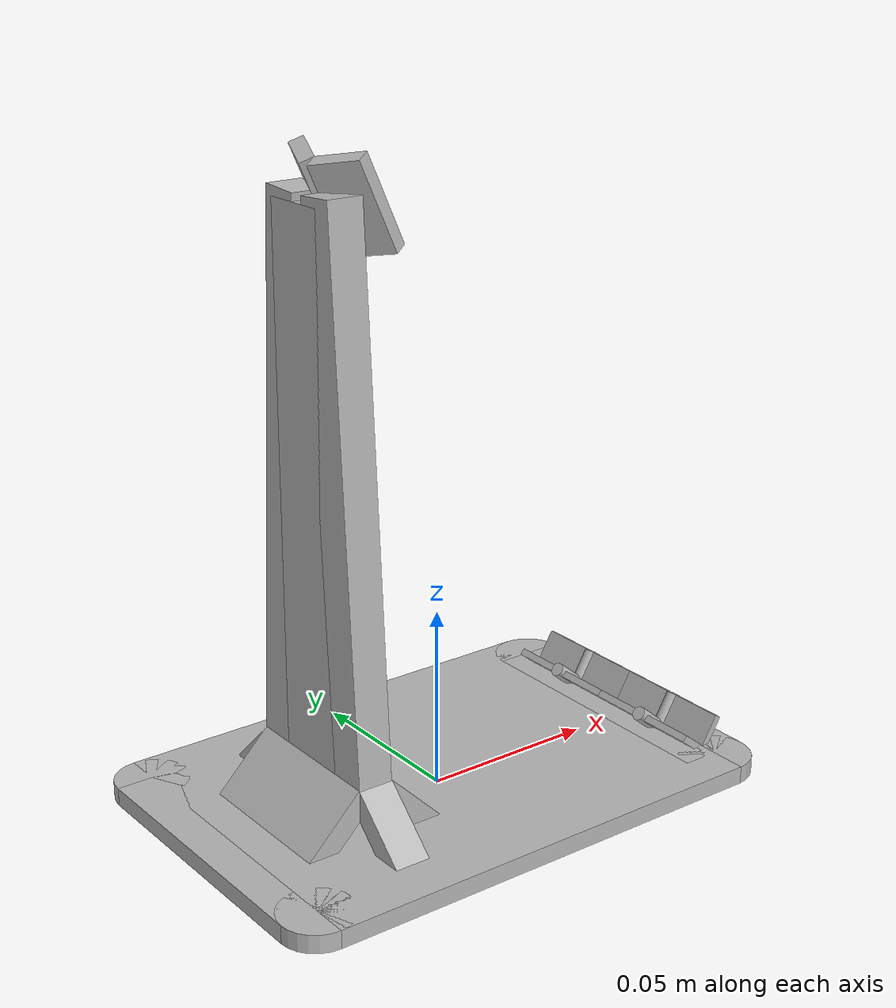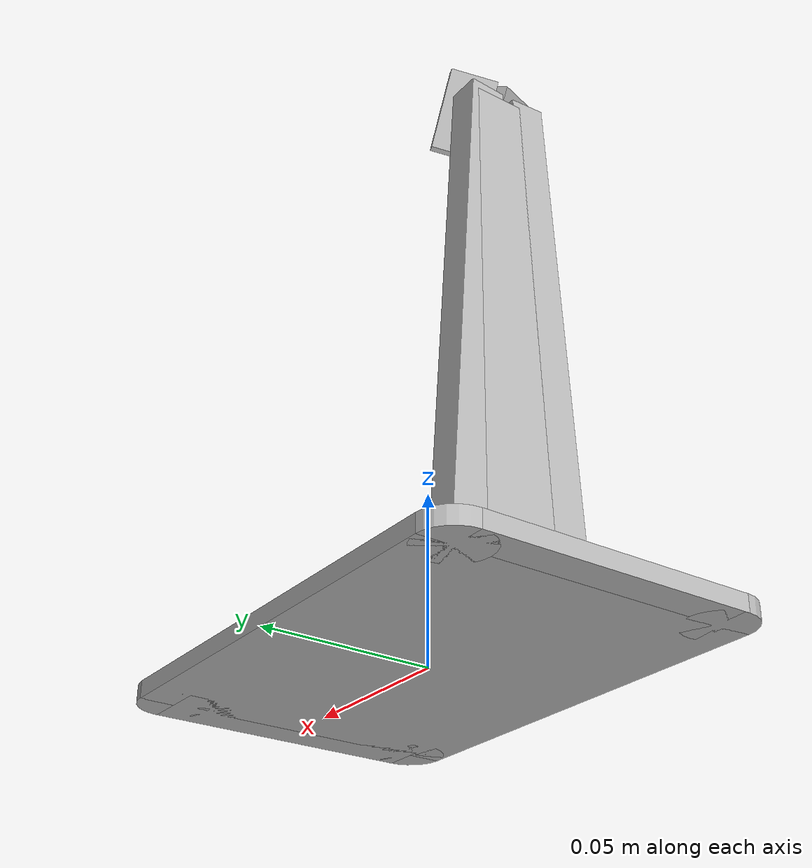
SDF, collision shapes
<?xml version="1.0" ?>
<!-- |    This document was autogenerated by xacro from bazel-out/k8-opt/bin/models/lifelong/spatula/tmpz9lp_58d/spatula_holder_light_blue_issue8027_high.sdf.xacro | -->
<!-- |    EDITING THIS FILE BY HAND IS NOT RECOMMENDED                                 | -->
<sdf version="1.6" xmlns:drake="drake.mit.edu">
  <model name="spatula_holder_light_blue_issue8027_high">
    <link name="spatula_holder_light_blue_issue8027_high">
      <pose>0 0 0 0 0 0</pose>
      <inertial>
        <pose>-1.07e-05 0.0355 -0.000153 0 0 0</pose>
        <mass>0.35</mass>
        <inertia>
          <ixx> 0.000311</ixx>
          <ixy> 0.000000</ixy>
          <ixz> 0.000000</ixz>
          <iyy> 0.000497</iyy>
          <iyz> 0.000000</iyz>
          <izz> 0.000723</izz>
        </inertia>
      </inertial>
      <visual name="spatula_holder_light_blue_issue8027_high">
        <pose>0 0 0 0 0 0</pose>
        <geometry>
          <mesh>
            <uri>spatula_holder_light_blue_issue8027_high.gltf</uri>
            <scale>1.0 1.0 1.0</scale>
          </mesh>
        </geometry>
        <!-- Comment out the material below to ensure the texture is actually
             from the glTF specification. -->
      </visual>
      <collision name="base_back_block">
        <pose>-0.06488 -0.0 0.0025 0.0 0.0 0.0</pose>
        <geometry>
          <box>
            <size>0.02023 0.07977 0.005</size>
          </box>
        </geometry>
      </collision>
      <collision name="base_back_left">
        <pose>-0.06488 -0.03989 0.0025 0.0 -0.0 1.5708</pose>
        <geometry>
          <cylinder>
            <radius>0.01012</radius>
            <length>0.005</length>
          </cylinder>
        </geometry>
      </collision>
      <collision name="base_back_right">
        <pose>-0.06488 0.03988 0.0025 0.0 -0.0 1.5708</pose>
        <geometry>
          <cylinder>
            <radius>0.01012</radius>
            <length>0.005</length>
          </cylinder>
        </geometry>
      </collision>
      <collision name="base_front_block">
        <pose>0.06488 -0.0 0.0025 0.0 0.0 0.0</pose>
        <geometry>
          <box>
            <size>0.02023 0.07977 0.005</size>
          </box>
        </geometry>
      </collision>
      <collision name="base_front_left">
        <pose>0.06488 -0.03988 0.0025 0.0 -0.0 1.5708</pose>
        <geometry>
          <cylinder>
            <radius>0.01012</radius>
            <length>0.005</length>
          </cylinder>
        </geometry>
      </collision>
      <collision name="base_front_right">
        <pose>0.06488 0.03988 0.0025 0.0 -0.0 1.5708</pose>
        <geometry>
          <cylinder>
            <radius>0.01012</radius>
            <length>0.005</length>
          </cylinder>
        </geometry>
      </collision>
      <collision name="base_large_block">
        <pose>0.0 0.0 0.0025 0.0 0.0 0.0</pose>
        <geometry>
          <box>
            <size>0.12977 0.1 0.005</size>
          </box>
        </geometry>
      </collision>
      <collision name="bottom_back_tab_collision_1">
        <pose>0.061 0.0175 0.007 0.6708 -0.0 1.5708</pose>
        <geometry>
          <box>
            <size>0.035 0.007 0.002</size>
          </box>
        </geometry>
      </collision>
      <collision name="bottom_back_tab_collision_2">
        <pose>0.061 -0.0175 0.007 0.6708 -0.0 1.5708</pose>
        <geometry>
          <box>
            <size>0.035 0.007 0.002</size>
          </box>
        </geometry>
      </collision>
      <collision name="bottom_back_tab_collision_3">
        <pose>0.061 0.0175 0.007 2.2708 -0.0 1.5708</pose>
        <geometry>
          <cylinder>
            <radius>0.002</radius>
            <length>0.01</length>
          </cylinder>
        </geometry>
      </collision>
      <collision name="bottom_back_tab_collision_4">
        <pose>0.061 -0.0175 0.007 2.2708 -0.0 1.5708</pose>
        <geometry>
          <cylinder>
            <radius>0.002</radius>
            <length>0.01</length>
          </cylinder>
        </geometry>
      </collision>
      <collision name="bottom_front_tab_collision_1">
        <pose>0.068 0.0175 0.008 2.1008 -0.0 1.5708</pose>
        <geometry>
          <box>
            <size>0.035 0.01 0.002</size>
          </box>
        </geometry>
      </collision>
      <collision name="bottom_front_tab_collision_2">
        <pose>0.068 -0.0175 0.008 2.1008 -0.0 1.5708</pose>
        <geometry>
          <box>
            <size>0.035 0.01 0.002</size>
          </box>
        </geometry>
      </collision>
      <collision name="bottom_front_tab_collision_3">
        <pose>0.068 -0.0175 0.008 0.5208 -0.0 1.5708</pose>
        <geometry>
          <cylinder>
            <radius>0.002</radius>
            <length>0.01</length>
          </cylinder>
        </geometry>
      </collision>
      <collision name="bottom_front_tab_collision_4">
        <pose>0.068 0.0175 0.008 0.5208 -0.0 1.5708</pose>
        <geometry>
          <cylinder>
            <radius>0.002</radius>
            <length>0.01</length>
          </cylinder>
        </geometry>
      </collision>
      <collision name="pillar_base_inner">
        <pose>-0.02447 -0.0 0.0101 -2.35619 -0.0 1.5708</pose>
        <geometry>
          <box>
            <size>0.04297 0.02216 0.00618</size>
          </box>
        </geometry>
      </collision>
      <collision name="pillar_base_left">
        <pose>-0.03488 -0.02715 0.0101 -0.76447 0.0 -3.14159</pose>
        <geometry>
          <box>
            <size>0.00991 0.02216 0.00618</size>
          </box>
        </geometry>
      </collision>
      <collision name="pillar_base_outer">
        <pose>-0.04552 -0.0 0.0101 2.35567 0.0 1.5708</pose>
        <geometry>
          <box>
            <size>0.04297 0.02216 0.00618</size>
          </box>
        </geometry>
      </collision>
      <collision name="pillar_base_right">
        <pose>-0.03488 0.02715 0.0101 -0.76447 3.14159 -3.14159</pose>
        <geometry>
          <box>
            <size>0.00991 0.02216 0.00618</size>
          </box>
        </geometry>
      </collision>
      <collision name="pillar_center">
        <pose>-0.035 -0.0 0.09076 0.0 -0.0 1.5708</pose>
        <geometry>
          <box>
            <size>0.02159 0.00971 0.14248</size>
          </box>
        </geometry>
      </collision>
      <collision name="pillar_left">
        <pose>-0.035 -0.01169 0.09177 -0.0 3.08051 -1.5708</pose>
        <geometry>
          <box>
            <size>0.0108 0.00971 0.14548</size>
          </box>
        </geometry>
      </collision>
      <collision name="pillar_right">
        <pose>-0.035 0.01169 0.09177 -0.0 -0.06109 1.5708</pose>
        <geometry>
          <box>
            <size>0.0108 0.00971 0.14548</size>
          </box>
        </geometry>
      </collision>
      <collision name="top_tab_collision_1">
        <pose>-0.02831 -0.00722 0.16125 1.96467 -2.96857 1.97177</pose>
        <geometry>
          <box>
            <size>0.01434 0.02464 0.004</size>
          </box>
        </geometry>
      </collision>
      <collision name="top_tab_collision_2">
        <pose>-0.02831 0.00727 0.16125 1.17692 -0.17303 1.16982</pose>
        <geometry>
          <box>
            <size>0.01434 0.02464 0.004</size>
          </box>
        </geometry>
      </collision>
    </link>
    <frame name="origin">
      <pose relative_to="spatula_holder_light_blue_issue8027_high">0 0 0 0 0 0</pose>
    </frame>
    <frame name="spatula_holder">
      <pose relative_to="spatula_holder_light_blue_issue8027_high">0 0 0 0 0 0</pose>
    </frame>
    <frame name="center_bottom__z_up__x_forward">
      <pose relative_to="spatula_holder_light_blue_issue8027_high">0 0 0 0 0 0</pose>
    </frame>
  </model>
</sdf>
